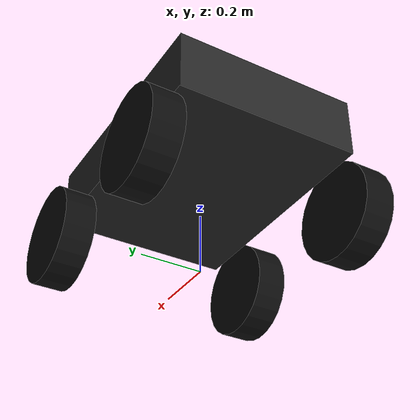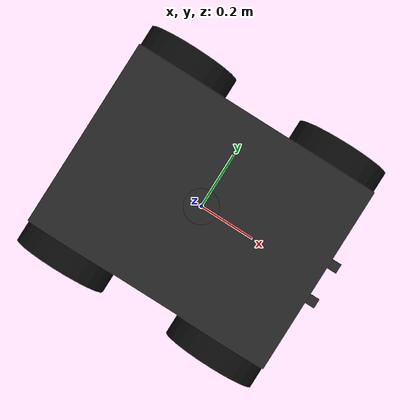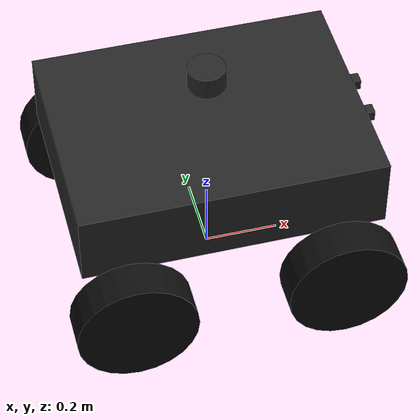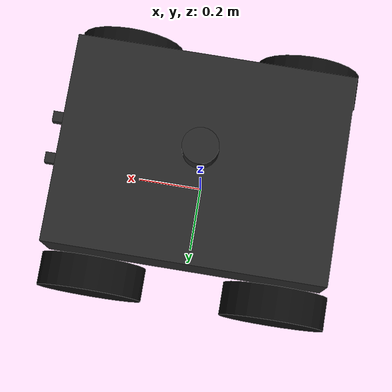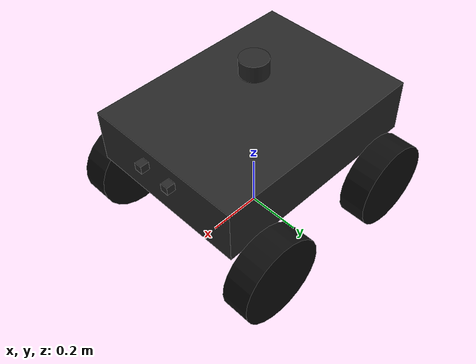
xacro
<?xml version="1.0"?>

<robot xmlns:xacro="http://www.ros.org/wiki/xacro"
       name="ugv">

  <!-- =========================
       PARAMETERS
       ========================= -->

  <xacro:property name="chassis_length" value="0.80"/>
  <xacro:property name="chassis_width"  value="0.60"/>
  <xacro:property name="chassis_height" value="0.20"/>

  <xacro:property name="wheel_radius" value="0.16"/>
  <xacro:property name="wheel_width"  value="0.10"/>

  <!-- =========================
       MATERIALS
       ========================= -->

  <material name="dark">
    <color rgba="0.15 0.15 0.15 1"/>
  </material>

  <material name="wheel">
    <color rgba="0.05 0.05 0.05 1"/>
  </material>

  <!-- =========================
       BASE LINK
       ========================= -->

  <xacro:property name="chassis_mount_z" value="0.40"/>

  <link name="base_link">

    <visual>
      <origin xyz="0 0 ${chassis_mount_z}"/>
      <geometry>
        <box size="${chassis_length} ${chassis_width} ${chassis_height}"/>
      </geometry>
      <material name="dark"/>
    </visual>

    <collision>
      <origin xyz="0 0 ${chassis_mount_z}"/>
      <geometry>
        <box size="${chassis_length} ${chassis_width} ${chassis_height}"/>
      </geometry>
    </collision>

    <inertial>
      <origin xyz="0 0 ${chassis_mount_z}"/>
      <mass value="18.0"/>
      <inertia
        ixx="1.03"
        ixy="0.0"
        ixz="0.0"
        iyy="1.54"
        iyz="0.0"
        izz="2.06"/>
    </inertial>

  </link>

  <!-- =========================
       WHEEL MACRO
       ========================= -->

  <xacro:macro name="wheel" params="name x y">

    <link name="${name}">

      <visual>
        <origin rpy="1.5708 0 0"/>
        <geometry>
          <cylinder
            radius="${wheel_radius}"
            length="${wheel_width}"/>
        </geometry>
        <material name="wheel"/>
      </visual>

      <collision>
        <origin rpy="1.5708 0 0"/>
        <geometry>
          <cylinder
            radius="${wheel_radius}"
            length="${wheel_width}"/>
        </geometry>
      </collision>

      <inertial>
        <mass value="3.0"/>
        <inertia
          ixx="0.03"
          ixy="0.0"
          ixz="0.0"
          iyy="0.03"
          iyz="0.0"
          izz="0.03"/>
      </inertial>

    </link>

    <joint name="${name}_joint"
           type="continuous">

      <parent link="base_link"/>
      <child link="${name}"/>

      <origin
        xyz="${x} ${y} ${wheel_radius}"
        rpy="0 0 0"/>

      <axis xyz="0 1 0"/>

    </joint>

  </xacro:macro>

  <!-- =========================
       FOUR WHEELS
       ========================= -->

  <xacro:wheel
    name="front_left_wheel"
    x="0.28"
    y="0.35"/>

  <xacro:wheel
    name="front_right_wheel"
    x="0.28"
    y="-0.35"/>

  <xacro:wheel
    name="rear_left_wheel"
    x="-0.28"
    y="0.35"/>

  <xacro:wheel
    name="rear_right_wheel"
    x="-0.28"
    y="-0.35"/>

  <!-- =========================
       ROS 2 CONTROL / GAZEBO
       ========================= -->

  <gazebo reference="base_link">
    <mu1>1.0</mu1>
    <mu2>1.0</mu2>
  </gazebo>

  <gazebo reference="front_left_wheel">
    <mu1>2.5</mu1>
    <mu2>2.5</mu2>
  </gazebo>

  <gazebo reference="front_right_wheel">
    <mu1>2.5</mu1>
    <mu2>2.5</mu2>
  </gazebo>

  <gazebo reference="rear_left_wheel">
    <mu1>2.5</mu1>
    <mu2>2.5</mu2>
  </gazebo>

  <gazebo reference="rear_right_wheel">
    <mu1>2.5</mu1>
    <mu2>2.5</mu2>
  </gazebo>
  <xacro:include filename="$(find ugv_sim)/urdf/ugv_gazebo.xacro"/>
  <xacro:include filename="$(find ugv_sim)/urdf/ugv_sensors.xacro"/>
</robot>

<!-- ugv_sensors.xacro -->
<robot xmlns:xacro="http://www.ros.org/wiki/xacro"
       name="ugv_sensors">

  <!-- =========================
       3D LIDAR
       ========================= -->

  <link name="lidar_link">
    <inertial>
      <mass value="0.5"/>
      <inertia ixx="0.001" ixy="0.0" ixz="0.0" iyy="0.001" iyz="0.0" izz="0.001"/>
    </inertial>
    <visual>
      <geometry><cylinder radius="0.05" length="0.06"/></geometry>
      <material name="dark"/>
    </visual>
    <collision>
      <geometry><cylinder radius="0.05" length="0.06"/></geometry>
    </collision>
  </link>

  <joint name="lidar_joint" type="fixed">
    <parent link="base_link"/>
    <child link="lidar_link"/>
    <origin xyz="0 0 0.63" rpy="0 0 0"/>
  </joint>

  <gazebo reference="lidar_link">
    <sensor name="lidar" type="gpu_lidar">
      <topic>lidar</topic>
      <update_rate>10</update_rate>
      <always_on>true</always_on>
      <visualize>true</visualize>
      <lidar>
        <scan>
          <horizontal>
            <samples>360</samples>
            <resolution>1</resolution>
            <min_angle>-3.14159</min_angle>
            <max_angle>3.14159</max_angle>
          </horizontal>
          <vertical>
            <samples>16</samples>
            <resolution>1</resolution>
            <min_angle>-0.2618</min_angle>
            <max_angle>0.2618</max_angle>
          </vertical>
        </scan>
        <range>
          <min>0.1</min>
          <max>30.0</max>
          <resolution>0.01</resolution>
        </range>
      </lidar>
    </sensor>
  </gazebo>

  <!-- =========================
       IMU
       ========================= -->

  <link name="imu_link">
    <inertial>
      <mass value="0.1"/>
      <inertia ixx="0.0001" ixy="0.0" ixz="0.0" iyy="0.0001" iyz="0.0" izz="0.0001"/>
    </inertial>
  </link>

  <joint name="imu_joint" type="fixed">
    <parent link="base_link"/>
    <child link="imu_link"/>
    <origin xyz="0 0 0.41" rpy="0 0 0"/>
  </joint>

  <gazebo reference="imu_link">
    <sensor name="imu_sensor" type="imu">
      <topic>imu/data</topic>
      <update_rate>100</update_rate>
      <always_on>true</always_on>
    </sensor>
  </gazebo>

  <!-- =========================
       STEREO CAMERA
       ========================= -->

  <xacro:macro name="stereo_camera_link" params="name y">
    <link name="${name}">
      <inertial>
        <mass value="0.05"/>
        <inertia ixx="0.00001" ixy="0.0" ixz="0.0" iyy="0.00001" iyz="0.0" izz="0.00001"/>
      </inertial>
      <visual>
        <geometry><box size="0.03 0.03 0.03"/></geometry>
        <material name="dark"/>
      </visual>
    </link>

    <joint name="${name}_joint" type="fixed">
      <parent link="base_link"/>
      <child link="${name}"/>
      <origin xyz="0.42 ${y} 0.45" rpy="0 0 0"/>
    </joint>
  </xacro:macro>

  <xacro:stereo_camera_link name="camera_left_link" y="0.06"/>
  <xacro:stereo_camera_link name="camera_right_link" y="-0.06"/>

  <gazebo reference="camera_left_link">
    <sensor name="camera_left" type="camera">
      <topic>camera/left/image_raw</topic>
      <update_rate>15</update_rate>
      <always_on>true</always_on>
      <visualize>false</visualize>
      <camera>
        <horizontal_fov>1.047</horizontal_fov>
        <image>
          <width>640</width>
          <height>480</height>
          <format>R8G8B8</format>
        </image>
        <clip>
          <near>0.1</near>
          <far>50</far>
        </clip>
      </camera>
    </sensor>
  </gazebo>

  <gazebo reference="camera_right_link">
    <sensor name="camera_right" type="camera">
      <topic>camera/right/image_raw</topic>
      <update_rate>15</update_rate>
      <always_on>true</always_on>
      <visualize>false</visualize>
      <camera>
        <horizontal_fov>1.047</horizontal_fov>
        <image>
          <width>640</width>
          <height>480</height>
          <format>R8G8B8</format>
        </image>
        <clip>
          <near>0.1</near>
          <far>50</far>
        </clip>
      </camera>
    </sensor>
  </gazebo>

</robot>
